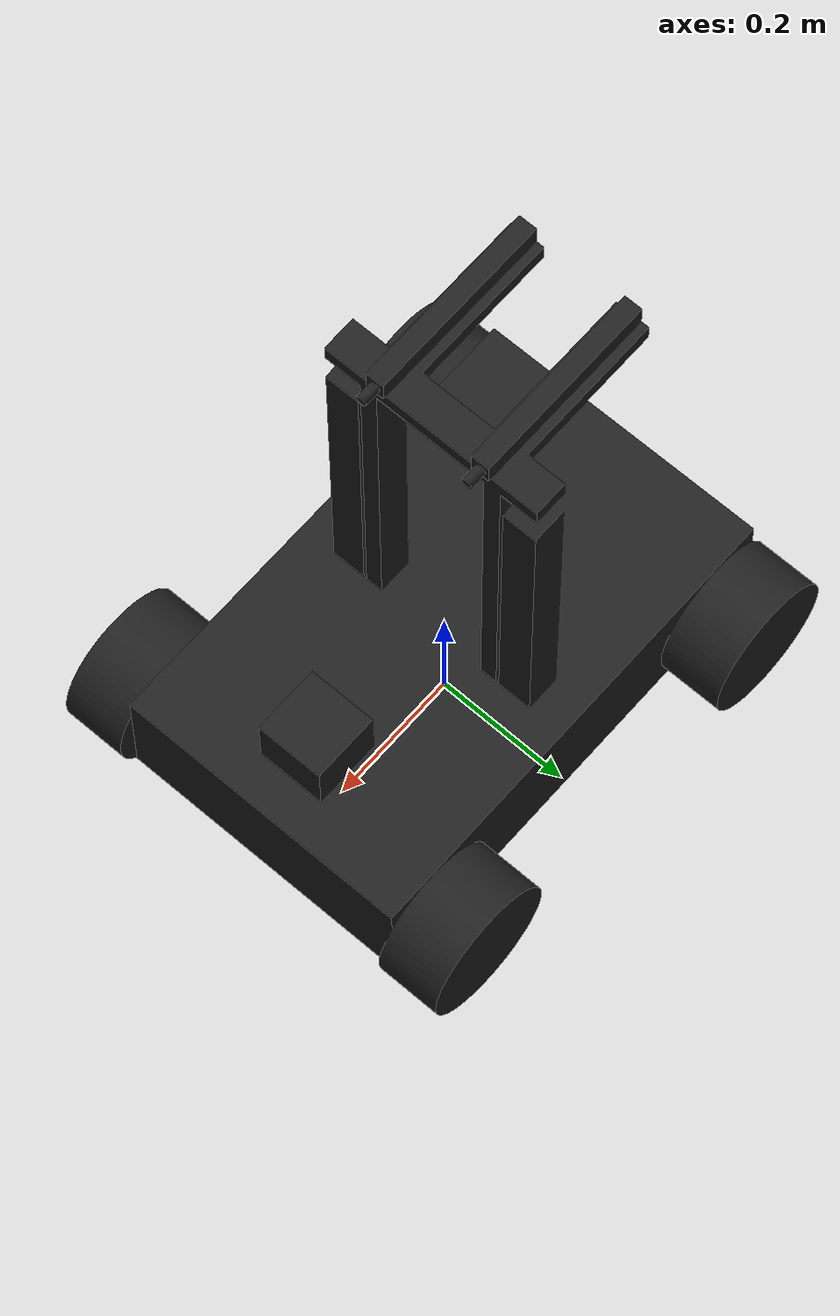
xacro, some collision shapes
<?xml version="1.0" ?>
<robot name="gofr" xmlns:xacro="http://ros.org/wiki/xacro">
  <xacro:include filename="$(find gofr_description)/urdf/common_properties.xacro"/>
  <xacro:include filename="$(find gofr_description)/urdf/gofr.gazebo.xacro"/>

  <link name="base_footprint"/>

  <joint name="base_joint" type="fixed">
    <parent link="base_footprint"/>
    <child link="base_link" />
    <origin xyz="0 0 0.010" rpy="0 0 0"/>
  </joint>

  <link name="base_link">
    <visual>
      <origin rpy="0 0 0" xyz="0 0 0"/>
      <geometry>
        <mesh filename="package://gofr_description/meshes/bases/base_link_m-binary.stl"/>
      </geometry>
      <material name="light_black"/>
    </visual>

    <collision>
      <origin xyz="0 0 0" rpy="0 0 0"/>
      <geometry>
        <mesh filename="package://gofr_description/meshes/bases/base_link_m-binary.stl"/>
      </geometry>
    </collision>

    <inertial>
      <origin rpy="0 0 0" xyz="5.834560042719257e-07 7.554645109307412e-16 0.13547716753400393"/>
      <mass value="442.4085411014063"/>
      <inertia ixx="10.851545" ixy="0.0" ixz="-8.3e-05"
               iyy="20.978869" iyz="-0.0"
               izz="24.333502" />
    </inertial>
  </link>

  <joint name="wheel_front_left_joint" type="fixed">
    <parent link="base_link"/>
    <child link="wheel_front_left_link"/>
    <origin xyz="0.27418 0.218401 0.1016" rpy="0 0 0"/>
    <axis xyz="0 -0.01 0"/>
  </joint>

  <link name="wheel_front_left_link">
    <visual>
      <origin rpy="0 0 0" xyz="-0.27418 -0.218401 -0.1016"/>
      <geometry>
        <mesh filename="package://gofr_description/meshes/wheels/Wheel_FL_1_m-binary.stl"/>
      </geometry>
      <material name="dark"/>
    </visual>

    <collision>
      <origin xyz="-0.27418 -0.218401 -0.1016" rpy="0 0 0"/>
      <geometry>
        <mesh filename="package://gofr_description/meshes/wheels/Wheel_FL_1_m-binary.stl"/>
      </geometry>
    </collision>

    <inertial>
      <origin rpy="0 0 0" xyz="2.9999998718555076e-07 0.046736499999996906 1.8041124150158794e-16"/>
      <mass value="23.79515185066752"/>
      <inertia ixx="0.078732" ixy="0.0" ixz="-0.0" iyy="0.122813" iyz="-0.0" izz="0.078732"/>
    </inertial>
  </link>

  <joint name="wheel_front_right_joint" type="fixed">
    <parent link="base_link"/>
    <child link="wheel_front_right_link"/>
    <origin rpy="0 0 0" xyz="0.27418 -0.218401 0.1016"/>
    <axis xyz="0 0.01 0"/>
  </joint>

  <link name="wheel_front_right_link">
    <visual>
      <origin rpy="0 0 0" xyz="-0.27418 0.218401 -0.1016"/>
      <geometry>
        <mesh filename="package://gofr_description/meshes/wheels/Wheel_FR_1_m-binary.stl"/>
      </geometry>
      <material name="dark"/>
    </visual>

    <collision>
      <origin xyz="-0.27418 0.218401 -0.1016" rpy="0 0 0"/>
      <geometry>
        <mesh filename="package://gofr_description/meshes/wheels/Wheel_FR_1_m-binary.stl"/>
      </geometry>
    </collision>

    <inertial>
      <origin rpy="0 0 0" xyz="2.999999867969727e-07 -0.04673649999999735 -2.7755575615628914e-17"/>
      <mass value="23.79515185066752"/>
      <inertia ixx="0.078732" ixy="-0.0" ixz="-0.0" iyy="0.122813" iyz="0.0" izz="0.078732"/>
    </inertial>
  </link>

  <joint name="wheel_rear_left_joint" type="fixed">
    <parent link="base_link"/>
    <child link="wheel_rear_left_link"/>
    <origin xyz="-0.27418 0.218401 0.1016" rpy="0 0 0"/>
    <axis xyz="0 -0.01 0"/>
  </joint>

  <link name="wheel_rear_left_link">
    <visual>
      <origin xyz="0.27418 -0.218401 -0.1016" rpy="0 0 0"/>
      <geometry>
        <mesh filename="package://gofr_description/meshes/wheels/Wheel_RL_1_m-binary.stl"/>
      </geometry>
      <material name="dark"/>
    </visual>

    <collision>
      <origin xyz="0.27418 -0.218401 -0.1016" rpy="0 0 0"/>
      <geometry>
        <mesh filename="package://gofr_description/meshes/wheels/Wheel_RL_1_m-binary.stl"/>
      </geometry>
    </collision>

    <inertial>
      <origin rpy="0 0 0" xyz="-3.0000001327579184e-07 0.04673649999999724 -5.412337245047638e-16"/>
      <mass value="23.795151850667533"/>
      <inertia ixx="0.078732" ixy="-0.0" ixz="-0.0" iyy="0.122813" iyz="0.0" izz="0.078732"/>
    </inertial>
  </link>

  <joint name="wheel_rear_right_joint" type="fixed">
    <parent link="base_link"/>
    <child link="wheel_rear_right_link"/>
    <origin xyz="-0.27418 -0.218401 0.1016" rpy="0 0 0"/>
    <axis xyz="0 0.01 0"/>
  </joint>

  <link name="wheel_rear_right_link">
    <visual>
      <origin xyz="0.27418 0.218401 -0.1016" rpy="0 0 0"/>
      <geometry>
        <mesh filename="package://gofr_description/meshes/wheels/Wheel_RR_1_m-binary.stl"/>
      </geometry>
      <material name="dark"/>
    </visual>

    <collision>
      <origin xyz="0.27418 0.218401 -0.1016" rpy="0 0 0"/>
      <geometry>
        <mesh filename="package://gofr_description/meshes/wheels/Wheel_RR_1_m-binary.stl"/>
      </geometry>
    </collision>

    <inertial>
      <origin rpy="0 0 0" xyz="-3.000000135533476e-07 -0.04673649999999696 -7.216449660063518e-16"/>
      <mass value="23.79515185066753"/>
      <inertia ixx="0.078732" ixy="-0.0" ixz="0.0" iyy="0.122813" iyz="0.0" izz="0.078732"/>
    </inertial>
  </link>

  <joint name="forks_joint" type="fixed">
    <parent link="forks_base_link"/>
    <child link="forks_link"/>
    <origin xyz="0.02065 0.0 0.013238" rpy="0 0 0"/>
    <axis xyz="-0.01 0 0"/>
  </joint>

  <link name="forks_link">
    <visual>
      <origin rpy="0 0 0" xyz="0.223838 -0.080963 -0.797323"/>
      <geometry>
        <mesh filename="package://gofr_description/meshes/bases/Forks_1_m-binary.stl"/>
      </geometry>
      <material name="dark"/>
    </visual>

    <collision>
      <origin xyz="0.223838 -0.080963 -0.797323" rpy="0 0 0"/>
      <geometry>
        <mesh filename="package://gofr_description/meshes/bases/Forks_1_m-binary.stl"/>
      </geometry>
    </collision>

    <inertial>
      <origin rpy="0 0 0" xyz="0.13900049999999445 -0.080962999999984 -1.999999987845058e-07"/>
      <mass value="0.8638966653394272"/>
      <inertia ixx="0.00569" ixy="-0.0" ixz="0.0" iyy="0.005577" iyz="0.0" izz="0.01124"/>
    </inertial>
  </link>

  <joint name="forks_base_joint" type="fixed">
    <parent link="lift_link"/>
    <child link="forks_base_link"/>
    <origin xyz="-0.244501 -0.027254 0.0254" rpy="0 0 0"/>
  </joint>

  <link name="forks_base_link">
    <visual>
      <origin rpy="0 0 0" xyz="0.244488 -0.080963 -0.784085"/>
      <geometry>
        <mesh filename="package://gofr_description/meshes/bases/Fork_Base_1_m-binary.stl"/>
      </geometry>
      <material name="dark"/>
    </visual>

    <collision>
      <origin xyz="0.244488 -0.080963 -0.784085" rpy="0 0 0"/>
      <geometry>
        <mesh filename="package://gofr_description/meshes/bases/Fork_Base_1_m-binary.stl"/>
      </geometry>
    </collision>

    <inertial>
      <origin rpy="0 0 0" xyz="0.13450510993896844 -0.08096299999998524 0.016500244144018406"/>
      <mass value="2.8896896867882305"/>
      <inertia ixx="0.01944" ixy="0.0" ixz="-2.7e-05" iyy="0.019063" iyz="0.0" izz="0.037928"/>
    </inertial>
  </link>

  <joint name="lift_joint" type="prismatic">
    <parent link="base_link"/>
    <child link="lift_link"/>
    <origin xyz="1.3e-05 0.108217 0.758685" rpy="0 0 0"/>
    <axis xyz="0 0 0.01"/>
    <limit effort="100" lower="0.0" upper="0.4572" velocity="100"/>
  </joint>

<transmission name="lift_tran">
    <type>transmission_interface/SimpleTransmission</type>
    <joint name="lift_joint">
      <hardwareInterface>hardware_interface/PositionJointInterface</hardwareInterface>
    </joint>
    <actuator name="lift_actr">
      <hardwareInterface>hardware_interface/PositionJointInterface</hardwareInterface>
      <mechanicalReduction>1</mechanicalReduction>
    </actuator>
  </transmission>

  <link name="lift_link">
    <visual>
      <origin rpy="0 0 0" xyz="-1.3e-05 -0.108217 -0.758685"/>
      <geometry>
        <mesh filename="package://gofr_description/meshes/bases/Lift_1_m-binary.stl"/>
      </geometry>
      <material name="dark"/>
    </visual>

    <collision>
      <origin xyz="-1.3e-05 -0.108217 -0.758685" rpy="0 0 0"/>
      <geometry>
        <mesh filename="package://gofr_description/meshes/bases/Lift_1_m-binary.stl"/>
      </geometry>
    </collision>

    <inertial>
      <origin rpy="0 0 0" xyz="-0.029056184413495844 -0.10821699999998471 -0.1933475989604001"/>
      <mass value="20.614826550909584"/>
      <inertia ixx="1.137646" ixy="0.0" ixz="0.123419" iyy="1.044686" iyz="0.0" izz="0.262287"/>
    </inertial>
  </link>

  <joint name="imu_joint" type="fixed">
    <parent link="base_link"/>
    <child link="imu_link"/>
    <origin xyz="0.0 0 0.068" rpy="0 0 0"/>
  </joint>

  <link name="imu_link"/>

  <joint name="scan_joint" type="fixed">
    <parent link="base_link"/>
    <child link="base_scan"/>
    <origin xyz="0.241818 0 0.242850" rpy="0 0 0"/>
    <axis xyz="0 1 0" />
  </joint>

  <link name="base_scan">
    <visual>
      <origin xyz="0 0 0.0" rpy="0 0 0"/>
      <geometry>
        <mesh filename="package://gofr_description/meshes/sensors/base_laser.stl"/>
      </geometry>
      <material name="dark"/>
    </visual>

    <collision>
      <origin xyz="0 0 0" rpy="0 0 0"/>
      <geometry>
        <box size="0.1 0.1 0.1"/>
      </geometry>
    </collision>

    <inertial>
      <mass value="1e-5" />
      <origin xyz="0 0 0" rpy="0 0 0"/>
      <inertia ixx="1e-6" ixy="0" ixz="0" iyy="1e-6" iyz="0" izz="1e-6" />
    </inertial>
  </link>

  <joint name="camera_joint" type="fixed">
    <origin xyz="0 -0.108217 .03" rpy="0 0 0"/>
    <parent link="lift_link"/>
    <child link="camera_link"/>
  </joint>

  <link name="camera_link">
    <collision>
      <origin xyz="0 0 0" rpy="0 0 0"/>
      <geometry>
        <box size="0.015 0.030 0.027"/>
      </geometry>
    </collision>
  </link>

  <joint name="camera_rgb_joint" type="fixed">
    <origin xyz="0.003 0.011 0.009" rpy="0 0 0"/>
    <parent link="camera_link"/>
    <child link="camera_rgb_frame"/>
  </joint>
  <link name="camera_rgb_frame"/>

  <joint name="camera_rgb_optical_joint" type="fixed">
    <origin xyz="0 0 0" rpy="-1.57 0 -1.57"/>
    <parent link="camera_rgb_frame"/>
    <child link="camera_rgb_optical_frame"/>
  </joint>
  <link name="camera_rgb_optical_frame"/>

</robot>
